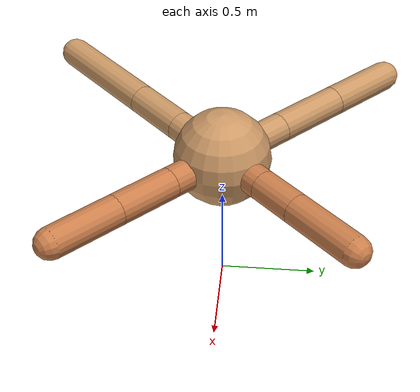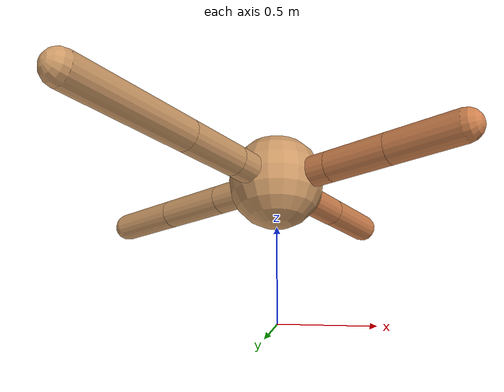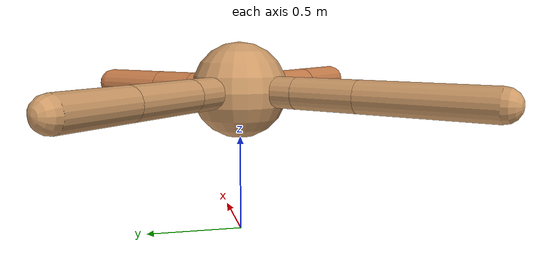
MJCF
<mujoco model="ant">
  <compiler angle="degree" coordinate="local" inertiafromgeom="true" />
  <option integrator="RK4" timestep="0.01" />
  <custom>
    <numeric data="0.0 0.0 0.55 1.0 0.0 0.0 0.0 0.0 1.0 0.0 -1.0 0.0 -1.0 0.0 1.0" name="init_qpos" />
  </custom>
  <default>
    <joint armature="1" damping="1" limited="true" />
    <geom conaffinity="0" condim="3" density="5.0" friction="1.5 0.1 0.1" margin="0.01" rgba="0.8 0.6 0.4 1" />
  </default>
  <worldbody>
    <body name="torso" pos="0 0 0.75">
      <geom name="torso_geom" pos="0 0 0" size="0.25" type="sphere" />

      <body name="front_left_leg" pos="0 0 0">
        <geom fromto="0.0 0.0 0.0 0.21707592223015504 0.21707592223015504 0.0" name="aux_1_geom" size="0.08" type="capsule" rgba=".8 .5 .3 1" />
        <body name="aux_1" pos="0.21707592223015504 0.21707592223015504 0.0">
          <joint axis="0 0 1" name="hip_1" pos="0.0 0.0 0.0" range="-40 40" type="hinge" />
          <geom fromto="0.0 0.0 0.0 0.1660915195811079 0.1660915195811079 0.0" name="left_leg_geom" size="0.08" type="capsule" rgba=".8 .5 .3 1" />
          <body pos="0.1660915195811079 0.1660915195811079 0.0" name="front_left_foot">
            <joint axis="-1 1 0" name="ankle_1" pos="0.0 0.0 0.0" range="30 100" type="hinge" />
            <geom fromto="0.0 0.0 0.0 0.2718087030866988 0.2718087030866988 0.0" name="left_ankle_geom" size="0.08" type="capsule" rgba=".8 .5 .3 1" />
          </body>
        </body>
      </body>
      <body name="front_right_leg" pos="0 0 0">
        <geom fromto="0.0 0.0 0.0 -0.27527256165649583 0.27527256165649583 0.0" name="aux_2_geom" size="0.08" type="capsule" />
        <body name="aux_2" pos="-0.27527256165649583 0.27527256165649583 0.0">
          <joint axis="0 0 1" name="hip_2" pos="0.0 0.0 0.0" range="-40 40" type="hinge" />
          <geom fromto="0.0 0.0 0.0 -0.27669686868373916 0.27669686868373916 0.0" name="right_leg_geom" size="0.08" type="capsule" />
          <body pos="-0.27669686868373916 0.27669686868373916 0.0" name="front_right_foot">
            <joint axis="1 1 0" name="ankle_2" pos="0.0 0.0 0.0" range="-100 -30" type="hinge" />
            <geom fromto="0.0 0.0 0.0 -0.28139703927277665 0.28139703927277665 0.0" name="right_ankle_geom" size="0.08" type="capsule" />
          </body>
        </body>
      </body>
      <body name="left_back_leg" pos="0 0 0">
        <geom fromto="0.0 0.0 0.0 -0.24330432462855597 -0.24330432462855597 0.0" name="aux_3_geom" size="0.08" type="capsule" />
        <body name="aux_3" pos="-0.24330432462855597 -0.24330432462855597 0.0">
          <joint axis="0 0 1" name="hip_3" pos="0.0 0.0 0.0" range="-40 40" type="hinge" />
          <geom fromto="0.0 0.0 0.0 -0.23221337716467466 -0.23221337716467466 0.0" name="back_leg_geom" size="0.08" type="capsule" />
          <body pos="-0.23221337716467466 -0.23221337716467466 0.0" name="left_back_foot">
            <joint axis="-1 1 0" name="ankle_3" pos="0.0 0.0 0.0" range="-100 -30" type="hinge" />
            <geom fromto="0.0 0.0 0.0 -0.4584594117237659 -0.4584594117237659 0.0" name="third_ankle_geom" size="0.08" type="capsule" />
          </body>
        </body>
      </body>
      <body name="right_back_leg" pos="0 0 0">
        <geom fromto="0.0 0.0 0.0 0.23508380657990632 -0.23508380657990632 0.0" name="aux_4_geom" size="0.08" type="capsule" rgba=".8 .5 .3 1" />
        <body name="aux_4" pos="0.23508380657990632 -0.23508380657990632 0.0">
          <joint axis="0 0 1" name="hip_4" pos="0.0 0.0 0.0" range="-40 40" type="hinge" />
          <geom fromto="0.0 0.0 0.0 0.22681242703431626 -0.22681242703431626 0.0" name="rightback_leg_geom" size="0.08" type="capsule" rgba=".8 .5 .3 1" />
          <body pos="0.22681242703431626 -0.22681242703431626 0.0" name="right_back_foot">
            <joint axis="1 1 0" name="ankle_4" pos="0.0 0.0 0.0" range="30 100" type="hinge" />
            <geom fromto="0.0 0.0 0.0 0.25889868303558294 -0.25889868303558294 0.0" name="fourth_ankle_geom" size="0.08" type="capsule" rgba=".8 .5 .3 1" />
          </body>
        </body>
      </body>
    </body>
  </worldbody>
  <actuator>
    <motor ctrllimited="true" ctrlrange="-1.0 1.0" joint="hip_4" gear="150" />
    <motor ctrllimited="true" ctrlrange="-1.0 1.0" joint="ankle_4" gear="150" />
    <motor ctrllimited="true" ctrlrange="-1.0 1.0" joint="hip_1" gear="150" />
    <motor ctrllimited="true" ctrlrange="-1.0 1.0" joint="ankle_1" gear="150" />
    <motor ctrllimited="true" ctrlrange="-1.0 1.0" joint="hip_2" gear="150" />
    <motor ctrllimited="true" ctrlrange="-1.0 1.0" joint="ankle_2" gear="150" />
    <motor ctrllimited="true" ctrlrange="-1.0 1.0" joint="hip_3" gear="150" />
    <motor ctrllimited="true" ctrlrange="-1.0 1.0" joint="ankle_3" gear="150" />
  </actuator>
</mujoco>
